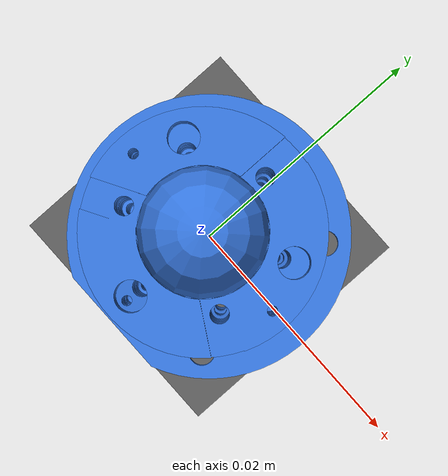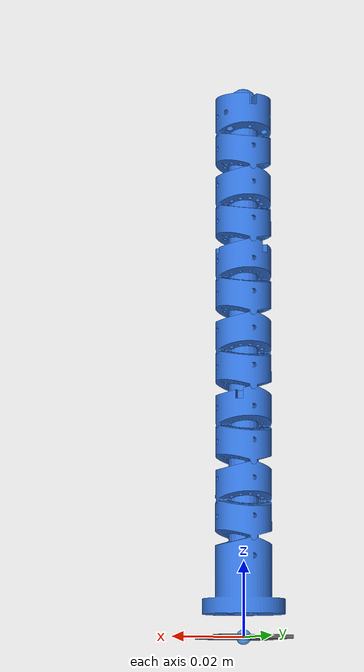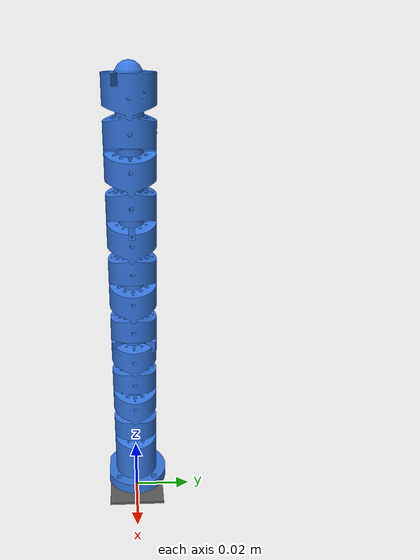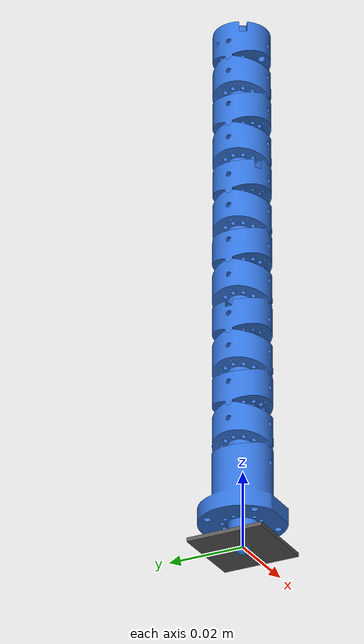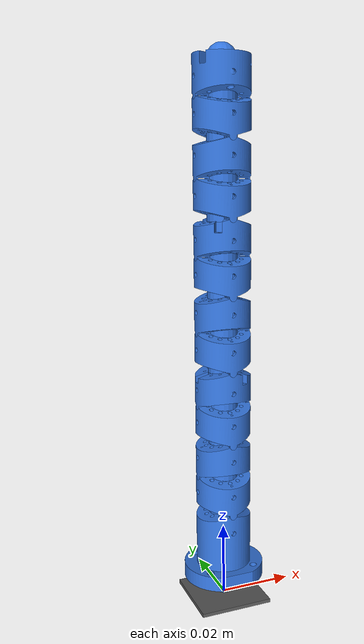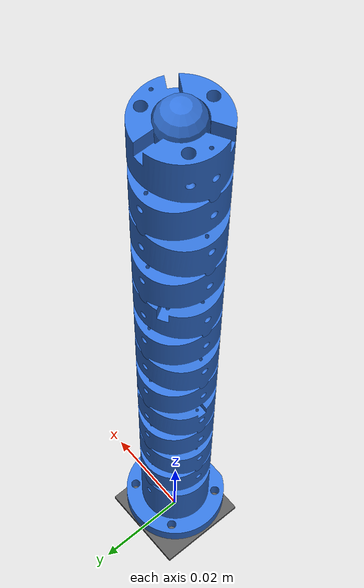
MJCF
<mujoco model="three_segment_reduced_order_arm">
  <asset>
    <mesh name="base_visual_mesh" file="../meshes/mujoco_visual_segments/base_visual.stl" scale="0.001 0.001 0.001" />
    <mesh name="segment_1_link_1_visual_mesh" file="../meshes/mujoco_visual_segments/segment_1_link_1_visual.stl" scale="0.001 0.001 0.001" />
    <mesh name="segment_1_link_2_visual_mesh" file="../meshes/mujoco_visual_segments/segment_1_link_2_visual.stl" scale="0.001 0.001 0.001" />
    <mesh name="segment_1_link_3_visual_mesh" file="../meshes/mujoco_visual_segments/segment_1_link_3_visual.stl" scale="0.001 0.001 0.001" />
    <mesh name="segment_1_link_4_visual_mesh" file="../meshes/mujoco_visual_segments/segment_1_link_4_visual.stl" scale="0.001 0.001 0.001" />
    <mesh name="segment_2_link_1_visual_mesh" file="../meshes/mujoco_visual_segments/segment_2_link_1_visual.stl" scale="0.001 0.001 0.001" />
    <mesh name="segment_2_link_2_visual_mesh" file="../meshes/mujoco_visual_segments/segment_2_link_2_visual.stl" scale="0.001 0.001 0.001" />
    <mesh name="segment_2_link_3_visual_mesh" file="../meshes/mujoco_visual_segments/segment_2_link_3_visual.stl" scale="0.001 0.001 0.001" />
    <mesh name="segment_2_link_4_visual_mesh" file="../meshes/mujoco_visual_segments/segment_2_link_4_visual.stl" scale="0.001 0.001 0.001" />
    <mesh name="segment_3_link_1_visual_mesh" file="../meshes/mujoco_visual_segments/segment_3_link_1_visual.stl" scale="0.001 0.001 0.001" />
    <mesh name="segment_3_link_2_visual_mesh" file="../meshes/mujoco_visual_segments/segment_3_link_2_visual.stl" scale="0.001 0.001 0.001" />
    <mesh name="segment_3_link_3_visual_mesh" file="../meshes/mujoco_visual_segments/segment_3_link_3_visual.stl" scale="0.001 0.001 0.001" />
    <mesh name="segment_3_link_4_visual_mesh" file="../meshes/mujoco_visual_segments/segment_3_link_4_visual.stl" scale="0.001 0.001 0.001" />
  </asset>
  <compiler angle="radian" />
  <option timestep="0.001" integrator="implicitfast" iterations="50" gravity="0 0 0" />
  <visual>
    <global azimuth="315" elevation="-25" offwidth="1080" offheight="720" />
    <headlight ambient="0.35 0.35 0.35" diffuse="0.75 0.75 0.75" specular="0.2 0.2 0.2" />
    <map znear="0.001" zfar="2" />
    <quality shadowsize="2048" />
  </visual>
  <default>
    <joint damping="0.05" armature="0.0001" limited="true" range="-0.25 0.25" stiffness="0.02" springref="0" />
    <geom type="capsule" size="0.004" density="1100" rgba="0.2 0.45 0.85 1" group="0" />
    <site size="0.003" rgba="0.95 0.25 0.2 1" />
    <position kp="40000" ctrllimited="true" ctrlrange="-0.02 0.02" forcelimited="true" forcerange="-20 20" />
  </default>
  <worldbody>
    <body name="mobile_base" pos="0 0 0" quat="1 0 0 0">
      <site name="mobile_base_frame" type="sphere" pos="0 0 0" size="0.002" rgba="0.2 0.6 1 0.8" group="2" />
      <geom name="mobile_base_box" type="box" size="0.01 0.01 0.0005" rgba="0.35 0.35 0.35 1" contype="0" conaffinity="0" group="2" />
      <site name="continuum_arm_mount" type="sphere" pos="0 0 0.025" quat="1 0 0 0" size="0.002" rgba="0.95 0.55 0.12 0.85" group="2" />
      <body name="base" pos="0 0 0.025" quat="1 0 0 0">
        <site name="base_site" pos="0 0 0" quat="1 0 0 0" />
        <geom name="base_visual_geom" type="mesh" mesh="base_visual_mesh" pos="-0.011160794 -0.010092945 -0.020345005" contype="0" conaffinity="0" density="0" group="1" />
        <body name="segment_1_link_1" pos="0 0 0">
          <joint name="segment_1_link_1_x" type="hinge" axis="1 0 0" />
          <joint name="segment_1_link_1_y" type="hinge" axis="0 1 0" />
          <geom name="segment_1_link_1_geom" fromto="0 0 0 0 0 0.01" group="0" />
          <geom name="segment_1_link_1_visual_geom" type="mesh" mesh="segment_1_link_1_visual_mesh" pos="-0.011160794 -0.010092945 -0.020345005" contype="0" conaffinity="0" density="0" group="1" />
          <body name="segment_1_link_2" pos="0 0 0.01">
            <joint name="segment_1_link_2_x" type="hinge" axis="1 0 0" />
            <joint name="segment_1_link_2_y" type="hinge" axis="0 1 0" />
            <geom name="segment_1_link_2_geom" fromto="0 0 0 0 0 0.01" group="0" />
            <geom name="segment_1_link_2_visual_geom" type="mesh" mesh="segment_1_link_2_visual_mesh" pos="-0.011160794 -0.010092945 -0.030345005" contype="0" conaffinity="0" density="0" group="1" />
            <body name="segment_1_link_3" pos="0 0 0.01">
              <joint name="segment_1_link_3_x" type="hinge" axis="1 0 0" />
              <joint name="segment_1_link_3_y" type="hinge" axis="0 1 0" />
              <geom name="segment_1_link_3_geom" fromto="0 0 0 0 0 0.01" group="0" />
              <geom name="segment_1_link_3_visual_geom" type="mesh" mesh="segment_1_link_3_visual_mesh" pos="-0.011160794 -0.010092945 -0.040345005" contype="0" conaffinity="0" density="0" group="1" />
              <body name="segment_1_link_4" pos="0 0 0.01">
                <joint name="segment_1_link_4_x" type="hinge" axis="1 0 0" />
                <joint name="segment_1_link_4_y" type="hinge" axis="0 1 0" />
                <geom name="segment_1_link_4_geom" fromto="0 0 0 0 0 0.01" group="0" />
                <site name="segment_1_tip" pos="0 0 0.01" quat="1 0 0 0" />
                <geom name="segment_1_link_4_visual_geom" type="mesh" mesh="segment_1_link_4_visual_mesh" pos="-0.011160794 -0.010092945 -0.050345005" contype="0" conaffinity="0" density="0" group="1" />
                <body name="segment_2_link_1" pos="0 0 0.01">
                  <joint name="segment_2_link_1_x" type="hinge" axis="1 0 0" />
                  <joint name="segment_2_link_1_y" type="hinge" axis="0 1 0" />
                  <geom name="segment_2_link_1_geom" fromto="0 0 0 0 0 0.01" group="0" />
                  <geom name="segment_2_link_1_visual_geom" type="mesh" mesh="segment_2_link_1_visual_mesh" pos="-0.011160794 -0.010092945 -0.060345005" contype="0" conaffinity="0" density="0" group="1" />
                  <body name="segment_2_link_2" pos="0 0 0.01">
                    <joint name="segment_2_link_2_x" type="hinge" axis="1 0 0" />
                    <joint name="segment_2_link_2_y" type="hinge" axis="0 1 0" />
                    <geom name="segment_2_link_2_geom" fromto="0 0 0 0 0 0.01" group="0" />
                    <geom name="segment_2_link_2_visual_geom" type="mesh" mesh="segment_2_link_2_visual_mesh" pos="-0.011160794 -0.010092945 -0.070345005" contype="0" conaffinity="0" density="0" group="1" />
                    <body name="segment_2_link_3" pos="0 0 0.01">
                      <joint name="segment_2_link_3_x" type="hinge" axis="1 0 0" />
                      <joint name="segment_2_link_3_y" type="hinge" axis="0 1 0" />
                      <geom name="segment_2_link_3_geom" fromto="0 0 0 0 0 0.01" group="0" />
                      <geom name="segment_2_link_3_visual_geom" type="mesh" mesh="segment_2_link_3_visual_mesh" pos="-0.011160794 -0.010092945 -0.080345005" contype="0" conaffinity="0" density="0" group="1" />
                      <body name="segment_2_link_4" pos="0 0 0.01">
                        <joint name="segment_2_link_4_x" type="hinge" axis="1 0 0" />
                        <joint name="segment_2_link_4_y" type="hinge" axis="0 1 0" />
                        <geom name="segment_2_link_4_geom" fromto="0 0 0 0 0 0.01" group="0" />
                        <site name="segment_2_tip" pos="0 0 0.01" quat="1 0 0 0" />
                        <geom name="segment_2_link_4_visual_geom" type="mesh" mesh="segment_2_link_4_visual_mesh" pos="-0.011160794 -0.010092945 -0.090345005" contype="0" conaffinity="0" density="0" group="1" />
                        <body name="segment_3_link_1" pos="0 0 0.01">
                          <joint name="segment_3_link_1_x" type="hinge" axis="1 0 0" />
                          <joint name="segment_3_link_1_y" type="hinge" axis="0 1 0" />
                          <geom name="segment_3_link_1_geom" fromto="0 0 0 0 0 0.01" group="0" />
                          <geom name="segment_3_link_1_visual_geom" type="mesh" mesh="segment_3_link_1_visual_mesh" pos="-0.011160794 -0.010092945 -0.100345005" contype="0" conaffinity="0" density="0" group="1" />
                          <body name="segment_3_link_2" pos="0 0 0.01">
                            <joint name="segment_3_link_2_x" type="hinge" axis="1 0 0" />
                            <joint name="segment_3_link_2_y" type="hinge" axis="0 1 0" />
                            <geom name="segment_3_link_2_geom" fromto="0 0 0 0 0 0.01" group="0" />
                            <geom name="segment_3_link_2_visual_geom" type="mesh" mesh="segment_3_link_2_visual_mesh" pos="-0.011160794 -0.010092945 -0.110345005" contype="0" conaffinity="0" density="0" group="1" />
                            <body name="segment_3_link_3" pos="0 0 0.01">
                              <joint name="segment_3_link_3_x" type="hinge" axis="1 0 0" />
                              <joint name="segment_3_link_3_y" type="hinge" axis="0 1 0" />
                              <geom name="segment_3_link_3_geom" fromto="0 0 0 0 0 0.01" group="0" />
                              <geom name="segment_3_link_3_visual_geom" type="mesh" mesh="segment_3_link_3_visual_mesh" pos="-0.011160794 -0.010092945 -0.120345005" contype="0" conaffinity="0" density="0" group="1" />
                              <body name="segment_3_link_4" pos="0 0 0.01">
                                <joint name="segment_3_link_4_x" type="hinge" axis="1 0 0" />
                                <joint name="segment_3_link_4_y" type="hinge" axis="0 1 0" />
                                <geom name="segment_3_link_4_geom" fromto="0 0 0 0 0 0.01" group="0" />
                                <site name="segment_3_tip" pos="0 0 0.01" quat="1 0 0 0" />
                                <site name="tip" pos="0 0 0.01" quat="1 0 0 0" />
                                <geom name="segment_3_link_4_visual_geom" type="mesh" mesh="segment_3_link_4_visual_mesh" pos="-0.011160794 -0.010092945 -0.130345005" contype="0" conaffinity="0" density="0" group="1" />
                              </body>
                            </body>
                          </body>
                        </body>
                      </body>
                    </body>
                  </body>
                </body>
              </body>
            </body>
          </body>
        </body>
      </body>
    </body>
  </worldbody>
  <tendon>
    <fixed name="tendon_1" limited="true" range="-0.02 0.02" damping="0" stiffness="0">
      <joint joint="segment_1_link_1_x" coef="0" />
      <joint joint="segment_1_link_1_y" coef="-0.005" />
      <joint joint="segment_1_link_2_x" coef="0" />
      <joint joint="segment_1_link_2_y" coef="-0.005" />
      <joint joint="segment_1_link_3_x" coef="0" />
      <joint joint="segment_1_link_3_y" coef="-0.005" />
      <joint joint="segment_1_link_4_x" coef="0" />
      <joint joint="segment_1_link_4_y" coef="-0.005" />
    </fixed>
    <fixed name="tendon_2" limited="true" range="-0.02 0.02" damping="0" stiffness="0">
      <joint joint="segment_1_link_1_x" coef="0.00433012701892" />
      <joint joint="segment_1_link_1_y" coef="0.0025" />
      <joint joint="segment_1_link_2_x" coef="0.00433012701892" />
      <joint joint="segment_1_link_2_y" coef="0.0025" />
      <joint joint="segment_1_link_3_x" coef="0.00433012701892" />
      <joint joint="segment_1_link_3_y" coef="0.0025" />
      <joint joint="segment_1_link_4_x" coef="0.00433012701892" />
      <joint joint="segment_1_link_4_y" coef="0.0025" />
    </fixed>
    <fixed name="tendon_3" limited="true" range="-0.02 0.02" damping="0" stiffness="0">
      <joint joint="segment_1_link_1_x" coef="-0.00433012701892" />
      <joint joint="segment_1_link_1_y" coef="0.0025" />
      <joint joint="segment_1_link_2_x" coef="-0.00433012701892" />
      <joint joint="segment_1_link_2_y" coef="0.0025" />
      <joint joint="segment_1_link_3_x" coef="-0.00433012701892" />
      <joint joint="segment_1_link_3_y" coef="0.0025" />
      <joint joint="segment_1_link_4_x" coef="-0.00433012701892" />
      <joint joint="segment_1_link_4_y" coef="0.0025" />
    </fixed>
    <fixed name="tendon_4" limited="true" range="-0.02 0.02" damping="0" stiffness="0">
      <joint joint="segment_1_link_1_x" coef="0.00433012701892" />
      <joint joint="segment_1_link_1_y" coef="-0.0025" />
      <joint joint="segment_1_link_2_x" coef="0.00433012701892" />
      <joint joint="segment_1_link_2_y" coef="-0.0025" />
      <joint joint="segment_1_link_3_x" coef="0.00433012701892" />
      <joint joint="segment_1_link_3_y" coef="-0.0025" />
      <joint joint="segment_1_link_4_x" coef="0.00433012701892" />
      <joint joint="segment_1_link_4_y" coef="-0.0025" />
      <joint joint="segment_2_link_1_x" coef="0.00433012701892" />
      <joint joint="segment_2_link_1_y" coef="-0.0025" />
      <joint joint="segment_2_link_2_x" coef="0.00433012701892" />
      <joint joint="segment_2_link_2_y" coef="-0.0025" />
      <joint joint="segment_2_link_3_x" coef="0.00433012701892" />
      <joint joint="segment_2_link_3_y" coef="-0.0025" />
      <joint joint="segment_2_link_4_x" coef="0.00433012701892" />
      <joint joint="segment_2_link_4_y" coef="-0.0025" />
    </fixed>
    <fixed name="tendon_5" limited="true" range="-0.02 0.02" damping="0" stiffness="0">
      <joint joint="segment_1_link_1_x" coef="6.12323399574e-19" />
      <joint joint="segment_1_link_1_y" coef="0.005" />
      <joint joint="segment_1_link_2_x" coef="6.12323399574e-19" />
      <joint joint="segment_1_link_2_y" coef="0.005" />
      <joint joint="segment_1_link_3_x" coef="6.12323399574e-19" />
      <joint joint="segment_1_link_3_y" coef="0.005" />
      <joint joint="segment_1_link_4_x" coef="6.12323399574e-19" />
      <joint joint="segment_1_link_4_y" coef="0.005" />
      <joint joint="segment_2_link_1_x" coef="6.12323399574e-19" />
      <joint joint="segment_2_link_1_y" coef="0.005" />
      <joint joint="segment_2_link_2_x" coef="6.12323399574e-19" />
      <joint joint="segment_2_link_2_y" coef="0.005" />
      <joint joint="segment_2_link_3_x" coef="6.12323399574e-19" />
      <joint joint="segment_2_link_3_y" coef="0.005" />
      <joint joint="segment_2_link_4_x" coef="6.12323399574e-19" />
      <joint joint="segment_2_link_4_y" coef="0.005" />
    </fixed>
    <fixed name="tendon_6" limited="true" range="-0.02 0.02" damping="0" stiffness="0">
      <joint joint="segment_1_link_1_x" coef="-0.00433012701892" />
      <joint joint="segment_1_link_1_y" coef="-0.0025" />
      <joint joint="segment_1_link_2_x" coef="-0.00433012701892" />
      <joint joint="segment_1_link_2_y" coef="-0.0025" />
      <joint joint="segment_1_link_3_x" coef="-0.00433012701892" />
      <joint joint="segment_1_link_3_y" coef="-0.0025" />
      <joint joint="segment_1_link_4_x" coef="-0.00433012701892" />
      <joint joint="segment_1_link_4_y" coef="-0.0025" />
      <joint joint="segment_2_link_1_x" coef="-0.00433012701892" />
      <joint joint="segment_2_link_1_y" coef="-0.0025" />
      <joint joint="segment_2_link_2_x" coef="-0.00433012701892" />
      <joint joint="segment_2_link_2_y" coef="-0.0025" />
      <joint joint="segment_2_link_3_x" coef="-0.00433012701892" />
      <joint joint="segment_2_link_3_y" coef="-0.0025" />
      <joint joint="segment_2_link_4_x" coef="-0.00433012701892" />
      <joint joint="segment_2_link_4_y" coef="-0.0025" />
    </fixed>
    <fixed name="tendon_7" limited="true" range="-0.02 0.02" damping="0" stiffness="0">
      <joint joint="segment_1_link_1_x" coef="0.005" />
      <joint joint="segment_1_link_1_y" coef="-3.06161699787e-19" />
      <joint joint="segment_1_link_2_x" coef="0.005" />
      <joint joint="segment_1_link_2_y" coef="-3.06161699787e-19" />
      <joint joint="segment_1_link_3_x" coef="0.005" />
      <joint joint="segment_1_link_3_y" coef="-3.06161699787e-19" />
      <joint joint="segment_1_link_4_x" coef="0.005" />
      <joint joint="segment_1_link_4_y" coef="-3.06161699787e-19" />
      <joint joint="segment_2_link_1_x" coef="0.005" />
      <joint joint="segment_2_link_1_y" coef="-3.06161699787e-19" />
      <joint joint="segment_2_link_2_x" coef="0.005" />
      <joint joint="segment_2_link_2_y" coef="-3.06161699787e-19" />
      <joint joint="segment_2_link_3_x" coef="0.005" />
      <joint joint="segment_2_link_3_y" coef="-3.06161699787e-19" />
      <joint joint="segment_2_link_4_x" coef="0.005" />
      <joint joint="segment_2_link_4_y" coef="-3.06161699787e-19" />
      <joint joint="segment_3_link_1_x" coef="0.005" />
      <joint joint="segment_3_link_1_y" coef="-3.06161699787e-19" />
      <joint joint="segment_3_link_2_x" coef="0.005" />
      <joint joint="segment_3_link_2_y" coef="-3.06161699787e-19" />
      <joint joint="segment_3_link_3_x" coef="0.005" />
      <joint joint="segment_3_link_3_y" coef="-3.06161699787e-19" />
      <joint joint="segment_3_link_4_x" coef="0.005" />
      <joint joint="segment_3_link_4_y" coef="-3.06161699787e-19" />
    </fixed>
    <fixed name="tendon_8" limited="true" range="-0.02 0.02" damping="0" stiffness="0">
      <joint joint="segment_1_link_1_x" coef="-0.0025" />
      <joint joint="segment_1_link_1_y" coef="0.00433012701892" />
      <joint joint="segment_1_link_2_x" coef="-0.0025" />
      <joint joint="segment_1_link_2_y" coef="0.00433012701892" />
      <joint joint="segment_1_link_3_x" coef="-0.0025" />
      <joint joint="segment_1_link_3_y" coef="0.00433012701892" />
      <joint joint="segment_1_link_4_x" coef="-0.0025" />
      <joint joint="segment_1_link_4_y" coef="0.00433012701892" />
      <joint joint="segment_2_link_1_x" coef="-0.0025" />
      <joint joint="segment_2_link_1_y" coef="0.00433012701892" />
      <joint joint="segment_2_link_2_x" coef="-0.0025" />
      <joint joint="segment_2_link_2_y" coef="0.00433012701892" />
      <joint joint="segment_2_link_3_x" coef="-0.0025" />
      <joint joint="segment_2_link_3_y" coef="0.00433012701892" />
      <joint joint="segment_2_link_4_x" coef="-0.0025" />
      <joint joint="segment_2_link_4_y" coef="0.00433012701892" />
      <joint joint="segment_3_link_1_x" coef="-0.0025" />
      <joint joint="segment_3_link_1_y" coef="0.00433012701892" />
      <joint joint="segment_3_link_2_x" coef="-0.0025" />
      <joint joint="segment_3_link_2_y" coef="0.00433012701892" />
      <joint joint="segment_3_link_3_x" coef="-0.0025" />
      <joint joint="segment_3_link_3_y" coef="0.00433012701892" />
      <joint joint="segment_3_link_4_x" coef="-0.0025" />
      <joint joint="segment_3_link_4_y" coef="0.00433012701892" />
    </fixed>
    <fixed name="tendon_9" limited="true" range="-0.02 0.02" damping="0" stiffness="0">
      <joint joint="segment_1_link_1_x" coef="-0.0025" />
      <joint joint="segment_1_link_1_y" coef="-0.00433012701892" />
      <joint joint="segment_1_link_2_x" coef="-0.0025" />
      <joint joint="segment_1_link_2_y" coef="-0.00433012701892" />
      <joint joint="segment_1_link_3_x" coef="-0.0025" />
      <joint joint="segment_1_link_3_y" coef="-0.00433012701892" />
      <joint joint="segment_1_link_4_x" coef="-0.0025" />
      <joint joint="segment_1_link_4_y" coef="-0.00433012701892" />
      <joint joint="segment_2_link_1_x" coef="-0.0025" />
      <joint joint="segment_2_link_1_y" coef="-0.00433012701892" />
      <joint joint="segment_2_link_2_x" coef="-0.0025" />
      <joint joint="segment_2_link_2_y" coef="-0.00433012701892" />
      <joint joint="segment_2_link_3_x" coef="-0.0025" />
      <joint joint="segment_2_link_3_y" coef="-0.00433012701892" />
      <joint joint="segment_2_link_4_x" coef="-0.0025" />
      <joint joint="segment_2_link_4_y" coef="-0.00433012701892" />
      <joint joint="segment_3_link_1_x" coef="-0.0025" />
      <joint joint="segment_3_link_1_y" coef="-0.00433012701892" />
      <joint joint="segment_3_link_2_x" coef="-0.0025" />
      <joint joint="segment_3_link_2_y" coef="-0.00433012701892" />
      <joint joint="segment_3_link_3_x" coef="-0.0025" />
      <joint joint="segment_3_link_3_y" coef="-0.00433012701892" />
      <joint joint="segment_3_link_4_x" coef="-0.0025" />
      <joint joint="segment_3_link_4_y" coef="-0.00433012701892" />
    </fixed>
  </tendon>
  <actuator>
    <position name="act_tendon_1" tendon="tendon_1" kp="40000" ctrllimited="true" ctrlrange="-0.02 0.02" forcelimited="true" forcerange="-20 20" />
    <position name="act_tendon_2" tendon="tendon_2" kp="40000" ctrllimited="true" ctrlrange="-0.02 0.02" forcelimited="true" forcerange="-20 20" />
    <position name="act_tendon_3" tendon="tendon_3" kp="40000" ctrllimited="true" ctrlrange="-0.02 0.02" forcelimited="true" forcerange="-20 20" />
    <position name="act_tendon_4" tendon="tendon_4" kp="40000" ctrllimited="true" ctrlrange="-0.02 0.02" forcelimited="true" forcerange="-20 20" />
    <position name="act_tendon_5" tendon="tendon_5" kp="40000" ctrllimited="true" ctrlrange="-0.02 0.02" forcelimited="true" forcerange="-20 20" />
    <position name="act_tendon_6" tendon="tendon_6" kp="40000" ctrllimited="true" ctrlrange="-0.02 0.02" forcelimited="true" forcerange="-20 20" />
    <position name="act_tendon_7" tendon="tendon_7" kp="40000" ctrllimited="true" ctrlrange="-0.02 0.02" forcelimited="true" forcerange="-20 20" />
    <position name="act_tendon_8" tendon="tendon_8" kp="40000" ctrllimited="true" ctrlrange="-0.02 0.02" forcelimited="true" forcerange="-20 20" />
    <position name="act_tendon_9" tendon="tendon_9" kp="40000" ctrllimited="true" ctrlrange="-0.02 0.02" forcelimited="true" forcerange="-20 20" />
  </actuator>
  <sensor>
    <tendonpos name="sensor_tendon_1_length" tendon="tendon_1" />
    <tendonvel name="sensor_tendon_1_velocity" tendon="tendon_1" />
    <actuatorfrc name="sensor_tendon_1_actuator_force" actuator="act_tendon_1" />
    <tendonpos name="sensor_tendon_2_length" tendon="tendon_2" />
    <tendonvel name="sensor_tendon_2_velocity" tendon="tendon_2" />
    <actuatorfrc name="sensor_tendon_2_actuator_force" actuator="act_tendon_2" />
    <tendonpos name="sensor_tendon_3_length" tendon="tendon_3" />
    <tendonvel name="sensor_tendon_3_velocity" tendon="tendon_3" />
    <actuatorfrc name="sensor_tendon_3_actuator_force" actuator="act_tendon_3" />
    <tendonpos name="sensor_tendon_4_length" tendon="tendon_4" />
    <tendonvel name="sensor_tendon_4_velocity" tendon="tendon_4" />
    <actuatorfrc name="sensor_tendon_4_actuator_force" actuator="act_tendon_4" />
    <tendonpos name="sensor_tendon_5_length" tendon="tendon_5" />
    <tendonvel name="sensor_tendon_5_velocity" tendon="tendon_5" />
    <actuatorfrc name="sensor_tendon_5_actuator_force" actuator="act_tendon_5" />
    <tendonpos name="sensor_tendon_6_length" tendon="tendon_6" />
    <tendonvel name="sensor_tendon_6_velocity" tendon="tendon_6" />
    <actuatorfrc name="sensor_tendon_6_actuator_force" actuator="act_tendon_6" />
    <tendonpos name="sensor_tendon_7_length" tendon="tendon_7" />
    <tendonvel name="sensor_tendon_7_velocity" tendon="tendon_7" />
    <actuatorfrc name="sensor_tendon_7_actuator_force" actuator="act_tendon_7" />
    <tendonpos name="sensor_tendon_8_length" tendon="tendon_8" />
    <tendonvel name="sensor_tendon_8_velocity" tendon="tendon_8" />
    <actuatorfrc name="sensor_tendon_8_actuator_force" actuator="act_tendon_8" />
    <tendonpos name="sensor_tendon_9_length" tendon="tendon_9" />
    <tendonvel name="sensor_tendon_9_velocity" tendon="tendon_9" />
    <actuatorfrc name="sensor_tendon_9_actuator_force" actuator="act_tendon_9" />
  </sensor>
</mujoco>
